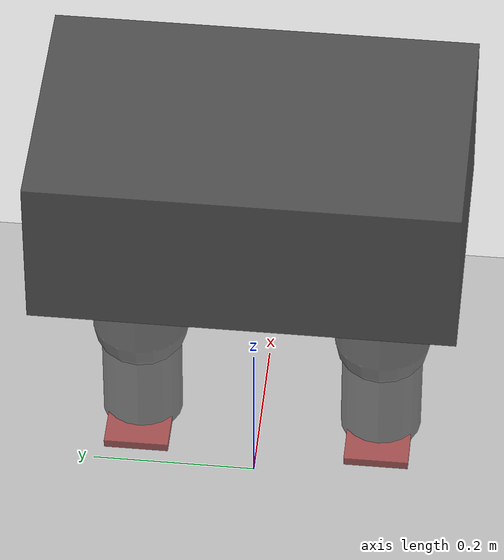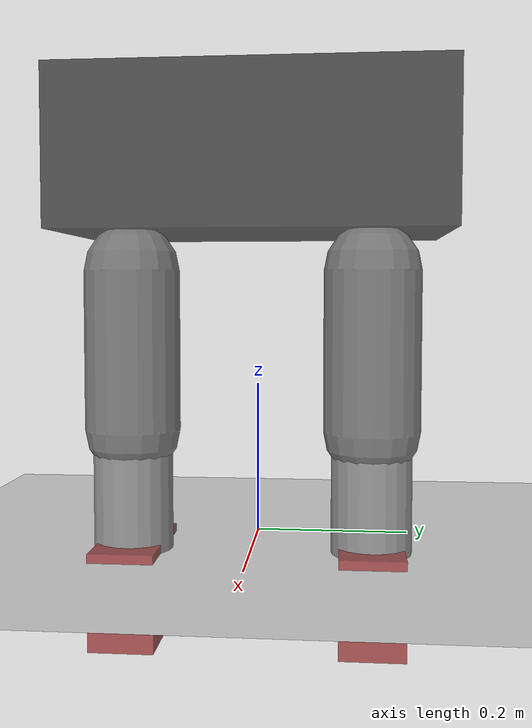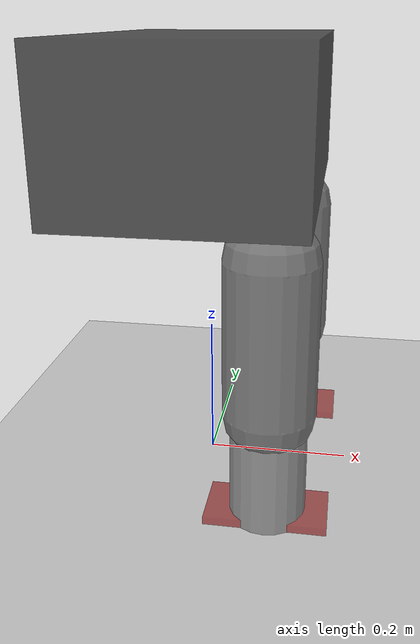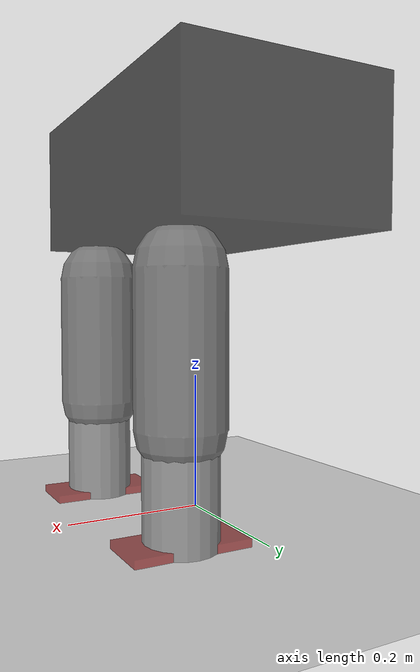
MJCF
<mujoco model="simple_biped">
  <compiler angle="radian" />
  <option timestep="0.001" />

  <worldbody>
    <geom name="ground" size="100 100 1" type="plane" />

    <body name="base" pos="0 0 0.5">
      <!-- Allow base to move freely in XY and rotate around Z -->
      <freejoint name="base_free" />

      <geom name="torso" mass="3" pos="0 0 0" size="0.15 0.25 0.1" type="box" rgba="0.2 0.2 0.2 0.8" />

      <!-- LEFT LEG -->
      <body name="left_thigh" pos="0.1 0.15 -0.15">
        <joint name="left_thigh_joint" axis="0 1 0" type="hinge" range="-1.2 1.2" damping="0.3" armature="0.01" />
        <geom name="left_thigh" mass="0.5" pos="0 0 -0.1" size="0.06 0.1" type="capsule" rgba="0.4 0.4 0.4 0.8" />

        <body name="left_calf" pos="0 0 -0.2">
          <joint name="left_calf_joint" axis="0 1 0" type="hinge" range="-1.2 1.2" damping="0.3" armature="0.01" />
          <geom name="left_calf" mass="0.3" pos="0 0 -0.1" size="0.05 0.1" type="capsule" rgba="0.5 0.5 0.5 0.8" />

          <body name="left_foot" pos="0 0 -0.2">
            <geom name="left_foot" mass="0.2" pos="0 0 0" friction="1.0" size="0.08 0.04 0.06" type="box" rgba="0.6 0.2 0.2 0.8" />
          </body>
        </body>
      </body>

      <!-- RIGHT LEG -->
      <body name="right_thigh" pos="0.1 -0.15 -0.15">
        <joint name="right_thigh_joint" axis="0 1 0" type="hinge" range="-1.2 1.2" damping="0.3" armature="0.01" />
        <geom name="right_thigh" mass="0.5" pos="0 0 -0.1" size="0.06 0.1" type="capsule" rgba="0.4 0.4 0.4 0.8" />

        <body name="right_calf" pos="0 0 -0.2">
          <joint name="right_calf_joint" axis="0 1 0" type="hinge" range="-1.2 1.2" damping="0.3" armature="0.01" />
          <geom name="right_calf" mass="0.3" pos="0 0 -0.1" size="0.05 0.1" type="capsule" rgba="0.5 0.5 0.5 0.8" />

          <body name="right_foot" pos="0 0 -0.2">
            <geom name="right_foot" mass="0.2" pos="0 0 0" friction="1.0" size="0.08 0.04 0.06" type="box" rgba="0.6 0.2 0.2 0.8" />
          </body>
        </body>
      </body>
    </body>
  </worldbody>

  <!-- gear=100 maps ctrl in [-1,1] directly to torque in [-100, 100] Nm -->
  <actuator>
    <motor name="left_thigh" joint="left_thigh_joint" ctrlrange="-1 1" gear="100" />
    <motor name="left_calf" joint="left_calf_joint" ctrlrange="-1 1" gear="100" />
    <motor name="right_thigh" joint="right_thigh_joint" ctrlrange="-1 1" gear="100" />
    <motor name="right_calf" joint="right_calf_joint" ctrlrange="-1 1" gear="100" />
  </actuator>
</mujoco>
